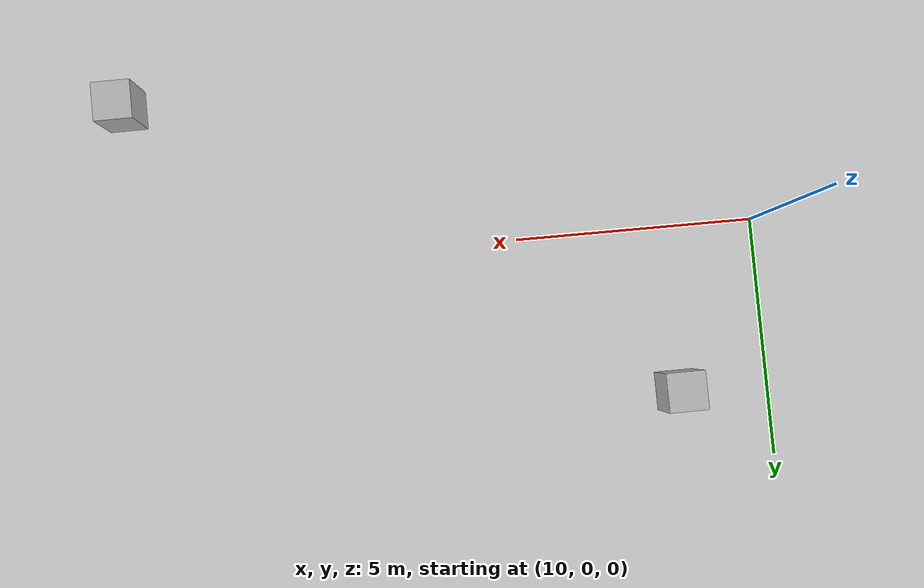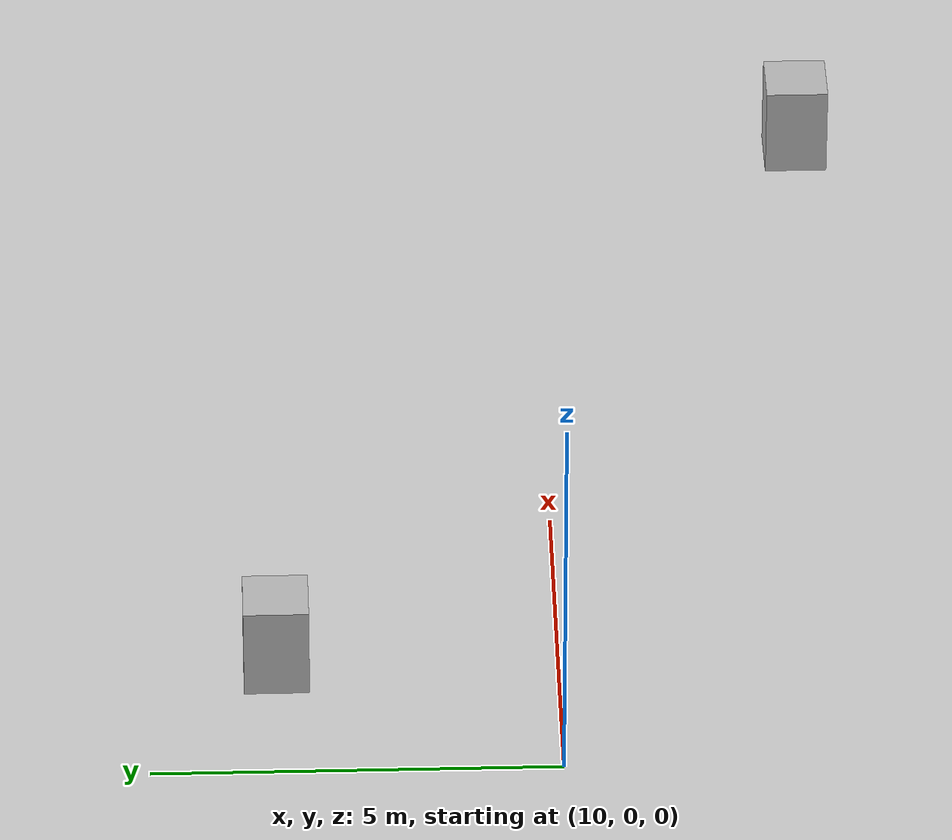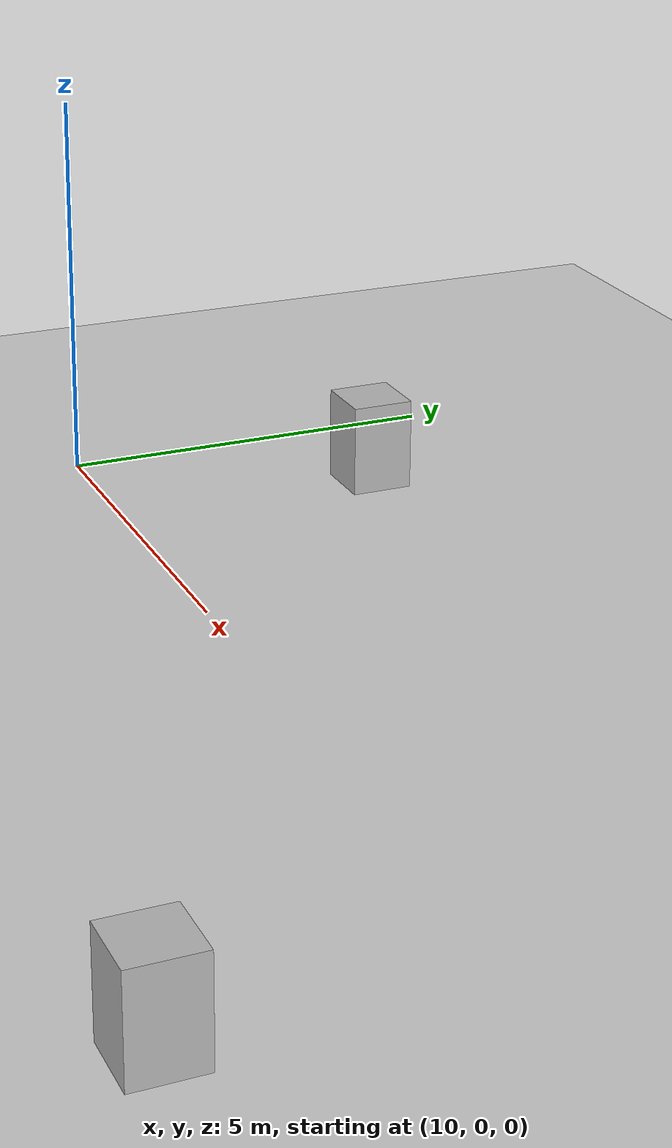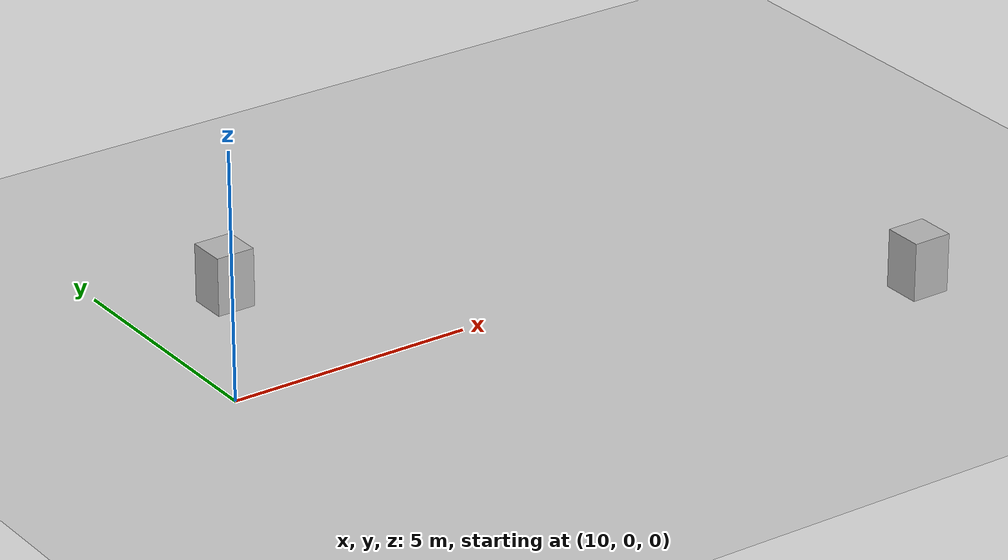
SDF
<?xml version="1.0"?>
<sdf version="1.6">
  <world name="v2-04g-r4-r1-cruise-s5091">
    <gravity>0 0 -9.81</gravity>
    <physics name="v2_deterministic" type="ode">
      <max_step_size>0.002</max_step_size>
      <real_time_update_rate>500</real_time_update_rate>
    </physics>
    <include>
      <uri>model://sun</uri>
    </include>
    <include>
      <uri>model://ground_plane</uri>
    </include>
    <model name="cruise-left">
      <static>true</static>
      <pose>11.954336937 3.460544337 0.600000000 0 0 0.006219409</pose>
      <link name="link">
        <collision name="collision">
          <geometry>
            <box>
              <size>0.800000 0.800000 1.200000</size>
            </box>
          </geometry>
        </collision>
        <visual name="visual">
          <geometry>
            <box>
              <size>0.800000 0.800000 1.200000</size>
            </box>
          </geometry>
        </visual>
      </link>
    </model>
    <model name="cruise-right">
      <static>true</static>
      <pose>23.037418456 -3.492724378 0.600000000 0 0 0.004664211</pose>
      <link name="link">
        <collision name="collision">
          <geometry>
            <box>
              <size>0.800000 0.800000 1.200000</size>
            </box>
          </geometry>
        </collision>
        <visual name="visual">
          <geometry>
            <box>
              <size>0.800000 0.800000 1.200000</size>
            </box>
          </geometry>
        </visual>
      </link>
    </model>
  </world>
</sdf>
